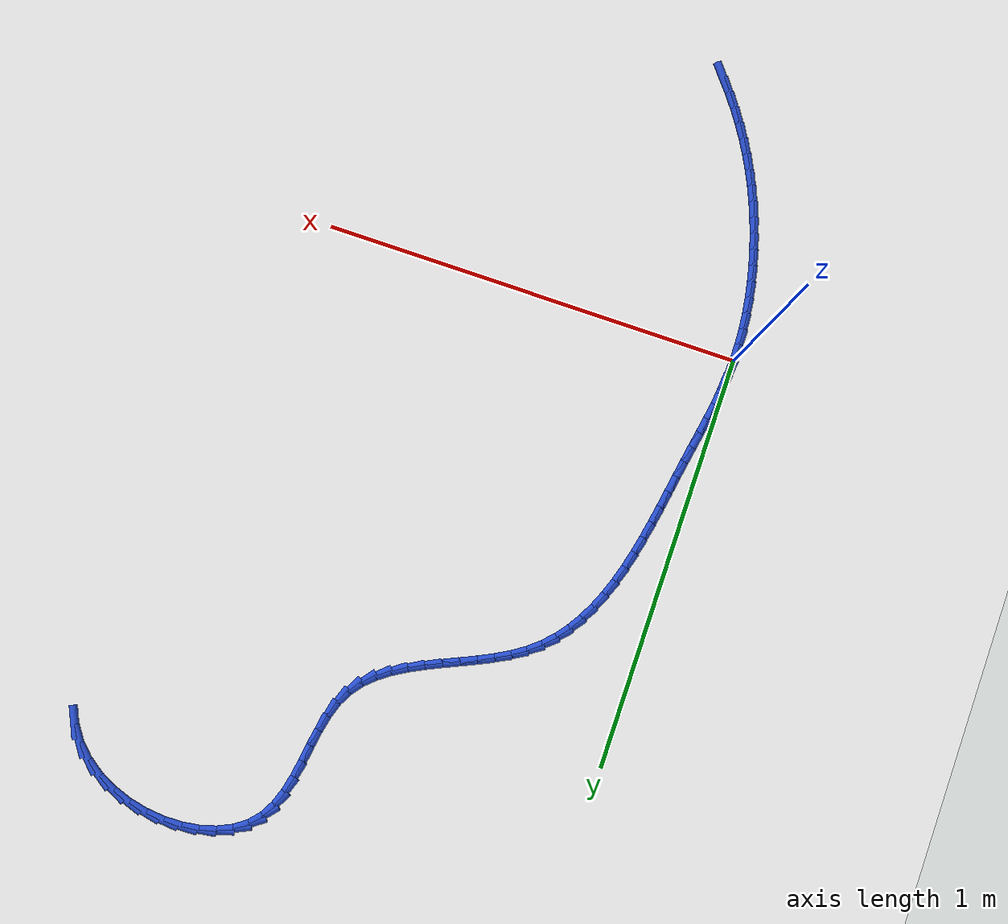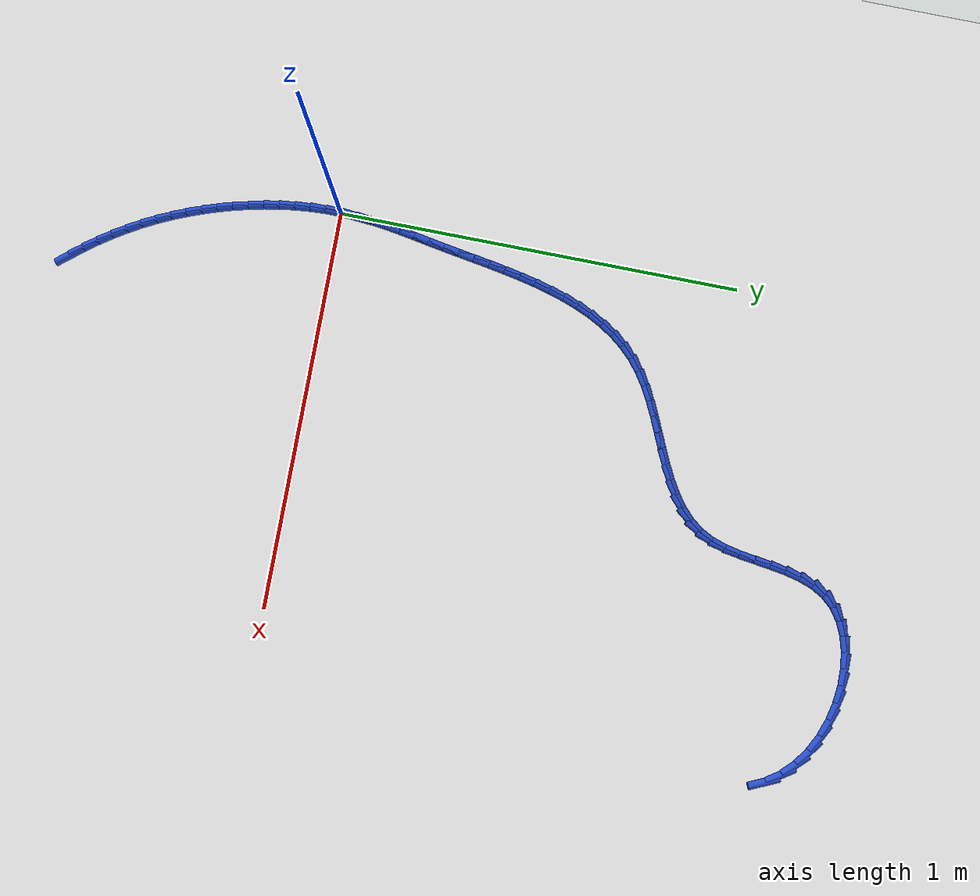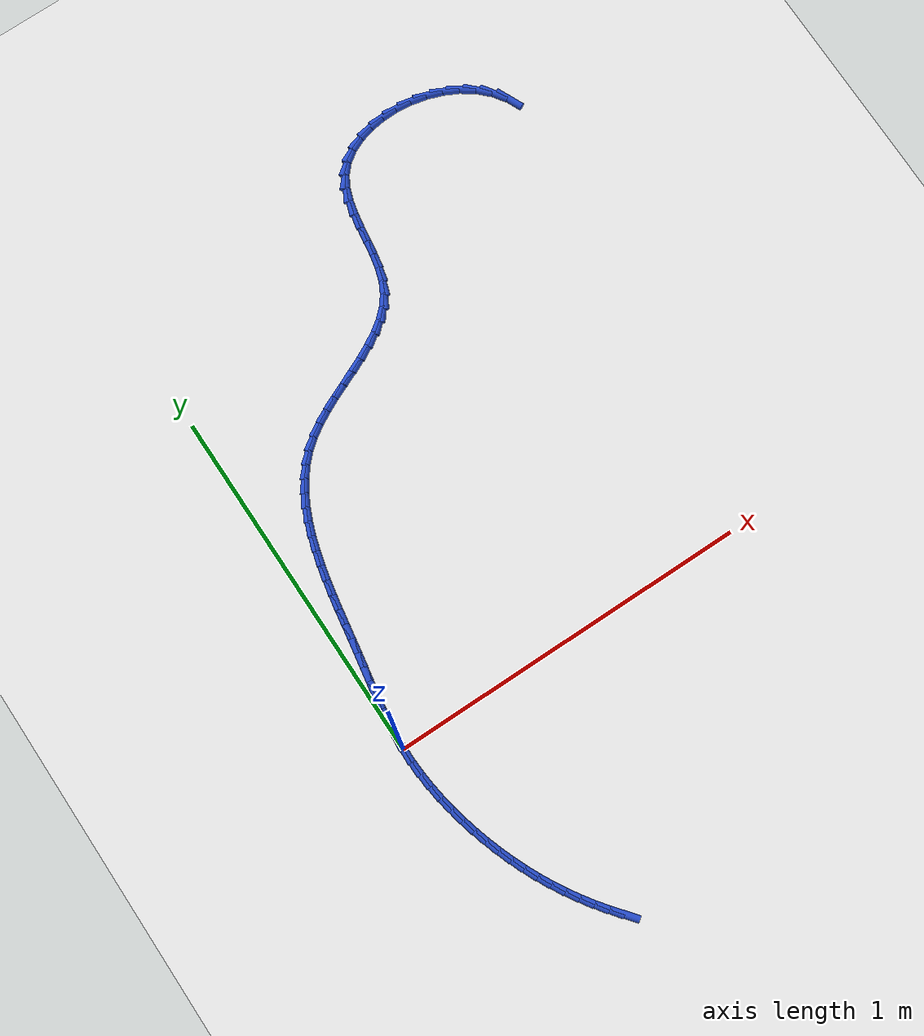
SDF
<sdf version="1.6">
 <world name="default">
  <model name="ground_plane">
   <static>1</static>
   <link name="link">
    <collision name="collision">
     <geometry><plane><normal>0 0 1</normal><size>100 100</size></plane></geometry>
     <surface><friction><ode><mu>100</mu><mu2>50</mu2></ode></friction></surface>
    </collision>
    <visual name="visual">
     <cast_shadows>0</cast_shadows>
     <geometry><plane><normal>0 0 1</normal><size>100 100</size></plane></geometry>
     <material>
      <script><uri>file://media/materials/scripts/gazebo.material</uri><name>Gazebo/WhiteGlow</name></script>
     </material>
    </visual>
   </link>
  </model>
  <model name="line">
   <link name="link_0">
    <pose>9.540979117872439e-18 1.3183898417423734e-16 0.01 0 1.57 1.5213984638818068</pose>
    <collision name="collision">
     <geometry><cylinder><radius>0.01</radius><length>0.08</length></cylinder></geometry>
    </collision>
    <visual name="visual">
     <material>
      <script><name>Gazebo/Blue</name><uri>file://media/materials/scripts/gazebo.material</uri></script>
     </material>
     <geometry><cylinder><radius>0.01</radius><length>0.08</length></cylinder></geometry>
    </visual>
   </link>
   <link name="link_1">
    <pose>0.0018602137942777413 0.03762714361064959 0.01 0 1.57 1.4777009141318533</pose>
    <collision name="collision">
     <geometry><cylinder><radius>0.01</radius><length>0.08</length></cylinder></geometry>
    </collision>
    <visual name="visual">
     <material>
      <script><name>Gazebo/Blue</name><uri>file://media/materials/scripts/gazebo.material</uri></script>
     </material>
     <geometry><cylinder><radius>0.01</radius><length>0.08</length></cylinder></geometry>
    </visual>
   </link>
   <link name="link_2">
    <pose>0.005358032314779202 0.07509094192685227 0.01 0 1.57 1.4428675951724659</pose>
    <collision name="collision">
     <geometry><cylinder><radius>0.01</radius><length>0.08</length></cylinder></geometry>
    </collision>
    <visual name="visual">
     <material>
      <script><name>Gazebo/Blue</name><uri>file://media/materials/scripts/gazebo.material</uri></script>
     </material>
     <geometry><cylinder><radius>0.01</radius><length>0.08</length></cylinder></geometry>
    </visual>
   </link>
   <link name="link_3">
    <pose>0.010174533303189185 0.11253520469424017 0.01 0 1.57 1.417198399982593</pose>
    <collision name="collision">
     <geometry><cylinder><radius>0.01</radius><length>0.08</length></cylinder></geometry>
    </collision>
    <visual name="visual">
     <material>
      <script><name>Gazebo/Blue</name><uri>file://media/materials/scripts/gazebo.material</uri></script>
     </material>
     <geometry><cylinder><radius>0.01</radius><length>0.08</length></cylinder></geometry>
    </visual>
   </link>
   <link name="link_4">
    <pose>0.015990794501192476 0.15010374165844498 0.01 0 1.57 1.4007402308607189</pose>
    <collision name="collision">
     <geometry><cylinder><radius>0.01</radius><length>0.08</length></cylinder></geometry>
    </collision>
    <visual name="visual">
     <material>
      <script><name>Gazebo/Blue</name><uri>file://media/materials/scripts/gazebo.material</uri></script>
     </material>
     <geometry><cylinder><radius>0.01</radius><length>0.08</length></cylinder></geometry>
    </visual>
   </link>
   <link name="link_5">
    <pose>0.02248789365047388 0.1879403625650987 0.01 0 1.57 1.3933547497004122</pose>
    <collision name="collision">
     <geometry><cylinder><radius>0.01</radius><length>0.08</length></cylinder></geometry>
    </collision>
    <visual name="visual">
     <material>
      <script><name>Gazebo/Blue</name><uri>file://media/materials/scripts/gazebo.material</uri></script>
     </material>
     <geometry><cylinder><radius>0.01</radius><length>0.08</length></cylinder></geometry>
    </visual>
   </link>
   <link name="link_6">
    <pose>0.029346908492718177 0.22618887715983313 0.01 0 1.57 1.3947697535677857</pose>
    <collision name="collision">
     <geometry><cylinder><radius>0.01</radius><length>0.08</length></cylinder></geometry>
    </collision>
    <visual name="visual">
     <material>
      <script><name>Gazebo/Blue</name><uri>file://media/materials/scripts/gazebo.material</uri></script>
     </material>
     <geometry><cylinder><radius>0.01</radius><length>0.08</length></cylinder></geometry>
    </visual>
   </link>
   <link name="link_7">
    <pose>0.036248916769610166 0.26499309518828007 0.01 0 1.57 1.4028272110607247</pose>
    <collision name="collision">
     <geometry><cylinder><radius>0.01</radius><length>0.08</length></cylinder></geometry>
    </collision>
    <visual name="visual">
     <material>
      <script><name>Gazebo/Blue</name><uri>file://media/materials/scripts/gazebo.material</uri></script>
     </material>
     <geometry><cylinder><radius>0.01</radius><length>0.08</length></cylinder></geometry>
    </visual>
   </link>
   <link name="link_8">
    <pose>0.042939994531234114 0.30445292408419544 0.01 0 1.57 1.4070385849353564</pose>
    <collision name="collision">
     <geometry><cylinder><radius>0.01</radius><length>0.08</length></cylinder></geometry>
    </collision>
    <visual name="visual">
     <material>
      <script><name>Gazebo/Blue</name><uri>file://media/materials/scripts/gazebo.material</uri></script>
     </material>
     <geometry><cylinder><radius>0.01</radius><length>0.08</length></cylinder></geometry>
    </visual>
   </link>
   <link name="link_9">
    <pose>0.04954302084536876 0.3444137642948315 0.01 0 1.57 1.4039381576390337</pose>
    <collision name="collision">
     <geometry><cylinder><radius>0.01</radius><length>0.08</length></cylinder></geometry>
    </collision>
    <visual name="visual">
     <material>
      <script><name>Gazebo/Blue</name><uri>file://media/materials/scripts/gazebo.material</uri></script>
     </material>
     <geometry><cylinder><radius>0.01</radius><length>0.08</length></cylinder></geometry>
    </visual>
   </link>
   <link name="link_10">
    <pose>0.05631632638733266 0.38462952713695747 0.01 0 1.57 1.3936261280437061</pose>
    <collision name="collision">
     <geometry><cylinder><radius>0.01</radius><length>0.08</length></cylinder></geometry>
    </collision>
    <visual name="visual">
     <material>
      <script><name>Gazebo/Blue</name><uri>file://media/materials/scripts/gazebo.material</uri></script>
     </material>
     <geometry><cylinder><radius>0.01</radius><length>0.08</length></cylinder></geometry>
    </visual>
   </link>
   <link name="link_11">
    <pose>0.06351841929244793 0.4248540040641556 0.01 0 1.57 1.3759993044138343</pose>
    <collision name="collision">
     <geometry><cylinder><radius>0.01</radius><length>0.08</length></cylinder></geometry>
    </collision>
    <visual name="visual">
     <material>
      <script><name>Gazebo/Blue</name><uri>file://media/materials/scripts/gazebo.material</uri></script>
     </material>
     <geometry><cylinder><radius>0.01</radius><length>0.08</length></cylinder></geometry>
    </visual>
   </link>
   <link name="link_12">
    <pose>0.07140780769603669 0.4648409865300077 0.01 0 1.57 1.3507603679512552</pose>
    <collision name="collision">
     <geometry><cylinder><radius>0.01</radius><length>0.08</length></cylinder></geometry>
    </collision>
    <visual name="visual">
     <material>
      <script><name>Gazebo/Blue</name><uri>file://media/materials/scripts/gazebo.material</uri></script>
     </material>
     <geometry><cylinder><radius>0.01</radius><length>0.08</length></cylinder></geometry>
    </visual>
   </link>
   <link name="link_13">
    <pose>0.08024299973342101 0.504344265988096 0.01 0 1.57 1.3174328158271387</pose>
    <collision name="collision">
     <geometry><cylinder><radius>0.01</radius><length>0.08</length></cylinder></geometry>
    </collision>
    <visual name="visual">
     <material>
      <script><name>Gazebo/Blue</name><uri>file://media/materials/scripts/gazebo.material</uri></script>
     </material>
     <geometry><cylinder><radius>0.01</radius><length>0.08</length></cylinder></geometry>
    </visual>
   </link>
   <link name="link_14">
    <pose>0.09028250353992306 0.5431176338920027 0.01 0 1.57 1.2753842196467329</pose>
    <collision name="collision">
     <geometry><cylinder><radius>0.01</radius><length>0.08</length></cylinder></geometry>
    </collision>
    <visual name="visual">
     <material>
      <script><name>Gazebo/Blue</name><uri>file://media/materials/scripts/gazebo.material</uri></script>
     </material>
     <geometry><cylinder><radius>0.01</radius><length>0.08</length></cylinder></geometry>
    </visual>
   </link>
   <link name="link_15">
    <pose>0.10178482725086493 0.5809148816953095 0.01 0 1.57 1.2238695057610665</pose>
    <collision name="collision">
     <geometry><cylinder><radius>0.01</radius><length>0.08</length></cylinder></geometry>
    </collision>
    <visual name="visual">
     <material>
      <script><name>Gazebo/Blue</name><uri>file://media/materials/scripts/gazebo.material</uri></script>
     </material>
     <geometry><cylinder><radius>0.01</radius><length>0.08</length></cylinder></geometry>
    </visual>
   </link>
   <link name="link_16">
    <pose>0.11500847900156871 0.6174898008515988 0.01 0 1.57 1.1621110110754658</pose>
    <collision name="collision">
     <geometry><cylinder><radius>0.01</radius><length>0.08</length></cylinder></geometry>
    </collision>
    <visual name="visual">
     <material>
      <script><name>Gazebo/Blue</name><uri>file://media/materials/scripts/gazebo.material</uri></script>
     </material>
     <geometry><cylinder><radius>0.01</radius><length>0.08</length></cylinder></geometry>
    </visual>
   </link>
   <link name="link_17">
    <pose>0.13021196692735654 0.6525961828144523 0.01 0 1.57 1.0894358017726544</pose>
    <collision name="collision">
     <geometry><cylinder><radius>0.01</radius><length>0.08</length></cylinder></geometry>
    </collision>
    <visual name="visual">
     <material>
      <script><name>Gazebo/Blue</name><uri>file://media/materials/scripts/gazebo.material</uri></script>
     </material>
     <geometry><cylinder><radius>0.01</radius><length>0.08</length></cylinder></geometry>
    </visual>
   </link>
   <link name="link_18">
    <pose>0.1476537991635505 0.6859878190374523 0.01 0 1.57 1.0054873231868855</pose>
    <collision name="collision">
     <geometry><cylinder><radius>0.01</radius><length>0.08</length></cylinder></geometry>
    </collision>
    <visual name="visual">
     <material>
      <script><name>Gazebo/Blue</name><uri>file://media/materials/scripts/gazebo.material</uri></script>
     </material>
     <geometry><cylinder><radius>0.01</radius><length>0.08</length></cylinder></geometry>
    </visual>
   </link>
   <link name="link_19">
    <pose>0.16759248384547268 0.7174185009741809 0.01 0 1.57 0.9105074810997517</pose>
    <collision name="collision">
     <geometry><cylinder><radius>0.01</radius><length>0.08</length></cylinder></geometry>
    </collision>
    <visual name="visual">
     <material>
      <script><name>Gazebo/Blue</name><uri>file://media/materials/scripts/gazebo.material</uri></script>
     </material>
     <geometry><cylinder><radius>0.01</radius><length>0.08</length></cylinder></geometry>
    </visual>
   </link>
   <link name="link_20">
    <pose>0.1902865291084453 0.74664202007822 0.01 0 1.57 0.8056368817264867</pose>
    <collision name="collision">
     <geometry><cylinder><radius>0.01</radius><length>0.08</length></cylinder></geometry>
    </collision>
    <visual name="visual">
     <material>
      <script><name>Gazebo/Blue</name><uri>file://media/materials/scripts/gazebo.material</uri></script>
     </material>
     <geometry><cylinder><radius>0.01</radius><length>0.08</length></cylinder></geometry>
    </visual>
   </link>
   <link name="link_21">
    <pose>0.2159944430877903 0.7734121678031516 0.01 0 1.57 0.693253201119296</pose>
    <collision name="collision">
     <geometry><cylinder><radius>0.01</radius><length>0.08</length></cylinder></geometry>
    </collision>
    <visual name="visual">
     <material>
      <script><name>Gazebo/Blue</name><uri>file://media/materials/scripts/gazebo.material</uri></script>
     </material>
     <geometry><cylinder><radius>0.01</radius><length>0.08</length></cylinder></geometry>
    </visual>
   </link>
   <link name="link_22">
    <pose>0.24497061301210393 0.7974861511714872 0.01 0 1.57 0.5878919642807634</pose>
    <collision name="collision">
     <geometry><cylinder><radius>0.01</radius><length>0.08</length></cylinder></geometry>
    </collision>
    <visual name="visual">
     <material>
      <script><name>Gazebo/Blue</name><uri>file://media/materials/scripts/gazebo.material</uri></script>
     </material>
     <geometry><cylinder><radius>0.01</radius><length>0.08</length></cylinder></geometry>
    </visual>
   </link>
   <link name="link_23">
    <pose>0.2771178980864824 0.8189125374025596 0.01 0 1.57 0.5095602700968297</pose>
    <collision name="collision">
     <geometry><cylinder><radius>0.01</radius><length>0.08</length></cylinder></geometry>
    </collision>
    <visual name="visual">
     <material>
      <script><name>Gazebo/Blue</name><uri>file://media/materials/scripts/gazebo.material</uri></script>
     </material>
     <geometry><cylinder><radius>0.01</radius><length>0.08</length></cylinder></geometry>
    </visual>
   </link>
   <link name="link_24">
    <pose>0.3117239797503072 0.8382497771472255 0.01 0 1.57 0.45729567412060956</pose>
    <collision name="collision">
     <geometry><cylinder><radius>0.01</radius><length>0.08</length></cylinder></geometry>
    </collision>
    <visual name="visual">
     <material>
      <script><name>Gazebo/Blue</name><uri>file://media/materials/scripts/gazebo.material</uri></script>
     </material>
     <geometry><cylinder><radius>0.01</radius><length>0.08</length></cylinder></geometry>
    </visual>
   </link>
   <link name="link_25">
    <pose>0.3480144544973966 0.8561077794913734 0.01 0 1.57 0.4283943543734005</pose>
    <collision name="collision">
     <geometry><cylinder><radius>0.01</radius><length>0.08</length></cylinder></geometry>
    </collision>
    <visual name="visual">
     <material>
      <script><name>Gazebo/Blue</name><uri>file://media/materials/scripts/gazebo.material</uri></script>
     </material>
     <geometry><cylinder><radius>0.01</radius><length>0.08</length></cylinder></geometry>
    </visual>
   </link>
   <link name="link_26">
    <pose>0.38521491882156916 0.8730964535208919 0.01 0 1.57 0.42124980099251497</pose>
    <collision name="collision">
     <geometry><cylinder><radius>0.01</radius><length>0.08</length></cylinder></geometry>
    </collision>
    <visual name="visual">
     <material>
      <script><name>Gazebo/Blue</name><uri>file://media/materials/scripts/gazebo.material</uri></script>
     </material>
     <geometry><cylinder><radius>0.01</radius><length>0.08</length></cylinder></geometry>
    </visual>
   </link>
   <link name="link_27">
    <pose>0.42255096921664304 0.8898257083216696 0.01 0 1.57 0.43560560228455364</pose>
    <collision name="collision">
     <geometry><cylinder><radius>0.01</radius><length>0.08</length></cylinder></geometry>
    </collision>
    <visual name="visual">
     <material>
      <script><name>Gazebo/Blue</name><uri>file://media/materials/scripts/gazebo.material</uri></script>
     </material>
     <geometry><cylinder><radius>0.01</radius><length>0.08</length></cylinder></geometry>
    </visual>
   </link>
   <link name="link_28">
    <pose>0.4592482021764366 0.9069054529795945 0.01 0 1.57 0.47263384323847857</pose>
    <collision name="collision">
     <geometry><cylinder><radius>0.01</radius><length>0.08</length></cylinder></geometry>
    </collision>
    <visual name="visual">
     <material>
      <script><name>Gazebo/Blue</name><uri>file://media/materials/scripts/gazebo.material</uri></script>
     </material>
     <geometry><cylinder><radius>0.01</radius><length>0.08</length></cylinder></geometry>
    </visual>
   </link>
   <link name="link_29">
    <pose>0.494532214194768 0.9249455965805553 0.01 0 1.57 0.5349053730817138</pose>
    <collision name="collision">
     <geometry><cylinder><radius>0.01</radius><length>0.08</length></cylinder></geometry>
    </collision>
    <visual name="visual">
     <material>
      <script><name>Gazebo/Blue</name><uri>file://media/materials/scripts/gazebo.material</uri></script>
     </material>
     <geometry><cylinder><radius>0.01</radius><length>0.08</length></cylinder></geometry>
    </visual>
   </link>
   <link name="link_30">
    <pose>0.5276286017654558 0.94455604821044 0.01 0 1.57 0.6260728614755936</pose>
    <collision name="collision">
     <geometry><cylinder><radius>0.01</radius><length>0.08</length></cylinder></geometry>
    </collision>
    <visual name="visual">
     <material>
      <script><name>Gazebo/Blue</name><uri>file://media/materials/scripts/gazebo.material</uri></script>
     </material>
     <geometry><cylinder><radius>0.01</radius><length>0.08</length></cylinder></geometry>
    </visual>
   </link>
   <link name="link_31">
    <pose>0.5577629613823181 0.9663467169551375 0.01 0 1.57 0.749768314432401</pose>
    <collision name="collision">
     <geometry><cylinder><radius>0.01</radius><length>0.08</length></cylinder></geometry>
    </collision>
    <visual name="visual">
     <material>
      <script><name>Gazebo/Blue</name><uri>file://media/materials/scripts/gazebo.material</uri></script>
     </material>
     <geometry><cylinder><radius>0.01</radius><length>0.08</length></cylinder></geometry>
    </visual>
   </link>
   <link name="link_32">
    <pose>0.5841608895391733 0.9909275119005361 0.01 0 1.57 0.9069928572577938</pose>
    <collision name="collision">
     <geometry><cylinder><radius>0.01</radius><length>0.08</length></cylinder></geometry>
    </collision>
    <visual name="visual">
     <material>
      <script><name>Gazebo/Blue</name><uri>file://media/materials/scripts/gazebo.material</uri></script>
     </material>
     <geometry><cylinder><radius>0.01</radius><length>0.08</length></cylinder></geometry>
    </visual>
   </link>
   <link name="link_33">
    <pose>0.6060479827298397 1.018908342132524 0.01 0 1.57 1.0899137970166974</pose>
    <collision name="collision">
     <geometry><cylinder><radius>0.01</radius><length>0.08</length></cylinder></geometry>
    </collision>
    <visual name="visual">
     <material>
      <script><name>Gazebo/Blue</name><uri>file://media/materials/scripts/gazebo.material</uri></script>
     </material>
     <geometry><cylinder><radius>0.01</radius><length>0.08</length></cylinder></geometry>
    </visual>
   </link>
   <link name="link_34">
    <pose>0.6227133558785802 1.0508506773356325 0.01 0 1.57 1.249323673254769</pose>
    <collision name="collision">
     <geometry><cylinder><radius>0.01</radius><length>0.08</length></cylinder></geometry>
    </collision>
    <visual name="visual">
     <material>
      <script><name>Gazebo/Blue</name><uri>file://media/materials/scripts/gazebo.material</uri></script>
     </material>
     <geometry><cylinder><radius>0.01</radius><length>0.08</length></cylinder></geometry>
    </visual>
   </link>
   <link name="link_35">
    <pose>0.6345714150001026 1.086457835845379 0.01 0 1.57 1.3537976751370477</pose>
    <collision name="collision">
     <geometry><cylinder><radius>0.01</radius><length>0.08</length></cylinder></geometry>
    </collision>
    <visual name="visual">
     <material>
      <script><name>Gazebo/Blue</name><uri>file://media/materials/scripts/gazebo.material</uri></script>
     </material>
     <geometry><cylinder><radius>0.01</radius><length>0.08</length></cylinder></geometry>
    </visual>
   </link>
   <link name="link_36">
    <pose>0.6430019857467378 1.1246969032381031 0.01 0 1.57 1.4110650022134106</pose>
    <collision name="collision">
     <geometry><cylinder><radius>0.01</radius><length>0.08</length></cylinder></geometry>
    </collision>
    <visual name="visual">
     <material>
      <script><name>Gazebo/Blue</name><uri>file://media/materials/scripts/gazebo.material</uri></script>
     </material>
     <geometry><cylinder><radius>0.01</radius><length>0.08</length></cylinder></geometry>
    </visual>
   </link>
   <link name="link_37">
    <pose>0.6494162023737909 1.1645110890281178 0.01 0 1.57 1.4277523734582998</pose>
    <collision name="collision">
     <geometry><cylinder><radius>0.01</radius><length>0.08</length></cylinder></geometry>
    </collision>
    <visual name="visual">
     <material>
      <script><name>Gazebo/Blue</name><uri>file://media/materials/scripts/gazebo.material</uri></script>
     </material>
     <geometry><cylinder><radius>0.01</radius><length>0.08</length></cylinder></geometry>
    </visual>
   </link>
   <link name="link_38">
    <pose>0.6552251991365647 1.2048436027297342 0.01 0 1.57 1.4060738639525148</pose>
    <collision name="collision">
     <geometry><cylinder><radius>0.01</radius><length>0.08</length></cylinder></geometry>
    </collision>
    <visual name="visual">
     <material>
      <script><name>Gazebo/Blue</name><uri>file://media/materials/scripts/gazebo.material</uri></script>
     </material>
     <geometry><cylinder><radius>0.01</radius><length>0.08</length></cylinder></geometry>
    </visual>
   </link>
   <link name="link_39">
    <pose>0.6618401102903638 1.2446376538572648 0.01 0 1.57 1.3435786459064756</pose>
    <collision name="collision">
     <geometry><cylinder><radius>0.01</radius><length>0.08</length></cylinder></geometry>
    </collision>
    <visual name="visual">
     <material>
      <script><name>Gazebo/Blue</name><uri>file://media/materials/scripts/gazebo.material</uri></script>
     </material>
     <geometry><cylinder><radius>0.01</radius><length>0.08</length></cylinder></geometry>
    </visual>
   </link>
   <link name="link_40">
    <pose>0.6706720700904923 1.2828364519250215 0.01 0 1.57 1.2336509574036558</pose>
    <collision name="collision">
     <geometry><cylinder><radius>0.01</radius><length>0.08</length></cylinder></geometry>
    </collision>
    <visual name="visual">
     <material>
      <script><name>Gazebo/Blue</name><uri>file://media/materials/scripts/gazebo.material</uri></script>
     </material>
     <geometry><cylinder><radius>0.01</radius><length>0.08</length></cylinder></geometry>
    </visual>
   </link>
   <link name="link_41">
    <pose>0.6831322127922539 1.318383206447316 0.01 0 1.57 1.0682279757337139</pose>
    <collision name="collision">
     <geometry><cylinder><radius>0.01</radius><length>0.08</length></cylinder></geometry>
    </collision>
    <visual name="visual">
     <material>
      <script><name>Gazebo/Blue</name><uri>file://media/materials/scripts/gazebo.material</uri></script>
     </material>
     <geometry><cylinder><radius>0.01</radius><length>0.08</length></cylinder></geometry>
    </visual>
   </link>
   <link name="link_42">
    <pose>0.7006316726509526 1.35022112693846 0.01 0 1.57 0.8487314689223326</pose>
    <collision name="collision">
     <geometry><cylinder><radius>0.01</radius><length>0.08</length></cylinder></geometry>
    </collision>
    <visual name="visual">
     <material>
      <script><name>Gazebo/Blue</name><uri>file://media/materials/scripts/gazebo.material</uri></script>
     </material>
     <geometry><cylinder><radius>0.01</radius><length>0.08</length></cylinder></geometry>
    </visual>
   </link>
   <link name="link_43">
    <pose>0.7245030627952682 1.3773252909171676 0.01 0 1.57 0.626437201773708</pose>
    <collision name="collision">
     <geometry><cylinder><radius>0.01</radius><length>0.08</length></cylinder></geometry>
    </collision>
    <visual name="visual">
     <material>
      <script><name>Gazebo/Blue</name><uri>file://media/materials/scripts/gazebo.material</uri></script>
     </material>
     <geometry><cylinder><radius>0.01</radius><length>0.08</length></cylinder></geometry>
    </visual>
   </link>
   <link name="link_44">
    <pose>0.7547464578711351 1.3992115901270699 0.01 0 1.57 0.43820197652767523</pose>
    <collision name="collision">
     <geometry><cylinder><radius>0.01</radius><length>0.08</length></cylinder></geometry>
    </collision>
    <visual name="visual">
     <material>
      <script><name>Gazebo/Blue</name><uri>file://media/materials/scripts/gazebo.material</uri></script>
     </material>
     <geometry><cylinder><radius>0.01</radius><length>0.08</length></cylinder></geometry>
    </visual>
   </link>
   <link name="link_45">
    <pose>0.7902490270826533 1.4158475918931919 0.01 0 1.57 0.27943412489658653</pose>
    <collision name="collision">
     <geometry><cylinder><radius>0.01</radius><length>0.08</length></cylinder></geometry>
    </collision>
    <visual name="visual">
     <material>
      <script><name>Gazebo/Blue</name><uri>file://media/materials/scripts/gazebo.material</uri></script>
     </material>
     <geometry><cylinder><radius>0.01</radius><length>0.08</length></cylinder></geometry>
    </visual>
   </link>
   <link name="link_46">
    <pose>0.8298637923001349 1.4272147223252023 0.01 0 1.57 0.14182410572415036</pose>
    <collision name="collision">
     <geometry><cylinder><radius>0.01</radius><length>0.08</length></cylinder></geometry>
    </collision>
    <visual name="visual">
     <material>
      <script><name>Gazebo/Blue</name><uri>file://media/materials/scripts/gazebo.material</uri></script>
     </material>
     <geometry><cylinder><radius>0.01</radius><length>0.08</length></cylinder></geometry>
    </visual>
   </link>
   <link name="link_47">
    <pose>0.872443775393891 1.433294407532766 0.01 0 1.57 0.017423846027502545</pose>
    <collision name="collision">
     <geometry><cylinder><radius>0.01</radius><length>0.08</length></cylinder></geometry>
    </collision>
    <visual name="visual">
     <material>
      <script><name>Gazebo/Blue</name><uri>file://media/materials/scripts/gazebo.material</uri></script>
     </material>
     <geometry><cylinder><radius>0.01</radius><length>0.08</length></cylinder></geometry>
    </visual>
   </link>
   <link name="link_48">
    <pose>0.9168419982342343 1.434068073625551 0.01 0 1.57 -0.10063469008400559</pose>
    <collision name="collision">
     <geometry><cylinder><radius>0.01</radius><length>0.08</length></cylinder></geometry>
    </collision>
    <visual name="visual">
     <material>
      <script><name>Gazebo/Blue</name><uri>file://media/materials/scripts/gazebo.material</uri></script>
     </material>
     <geometry><cylinder><radius>0.01</radius><length>0.08</length></cylinder></geometry>
    </visual>
   </link>
   <link name="link_49">
    <pose>0.9619114826914754 1.4295171467132226 0.01 0 1.57 -0.21833486634404492</pose>
    <collision name="collision">
     <geometry><cylinder><radius>0.01</radius><length>0.08</length></cylinder></geometry>
    </collision>
    <visual name="visual">
     <material>
      <script><name>Gazebo/Blue</name><uri>file://media/materials/scripts/gazebo.material</uri></script>
     </material>
     <geometry><cylinder><radius>0.01</radius><length>0.08</length></cylinder></geometry>
    </visual>
   </link>
   <link name="link_50">
    <pose>1.0065052506359273 1.4196230529054479 0.01 0 1.57 -0.34114500668528774</pose>
    <collision name="collision">
     <geometry><cylinder><radius>0.01</radius><length>0.08</length></cylinder></geometry>
    </collision>
    <visual name="visual">
     <material>
      <script><name>Gazebo/Blue</name><uri>file://media/materials/scripts/gazebo.material</uri></script>
     </material>
     <geometry><cylinder><radius>0.01</radius><length>0.08</length></cylinder></geometry>
    </visual>
   </link>
   <link name="link_51">
    <pose>1.049476323937901 1.4043672183118932 0.01 0 1.57 -0.4742460753214095</pose>
    <collision name="collision">
     <geometry><cylinder><radius>0.01</radius><length>0.08</length></cylinder></geometry>
    </collision>
    <visual name="visual">
     <material>
      <script><name>Gazebo/Blue</name><uri>file://media/materials/scripts/gazebo.material</uri></script>
     </material>
     <geometry><cylinder><radius>0.01</radius><length>0.08</length></cylinder></geometry>
    </visual>
   </link>
   <link name="link_52">
    <pose>1.0896777244677087 1.3837310690422249 0.01 0 1.57 -0.6223879111697722</pose>
    <collision name="collision">
     <geometry><cylinder><radius>0.01</radius><length>0.08</length></cylinder></geometry>
    </collision>
    <visual name="visual">
     <material>
      <script><name>Gazebo/Blue</name><uri>file://media/materials/scripts/gazebo.material</uri></script>
     </material>
     <geometry><cylinder><radius>0.01</radius><length>0.08</length></cylinder></geometry>
    </visual>
   </link>
   <link name="link_53">
    <pose>1.1259624740956622 1.3576960312061104 0.01 0 1.57 -0.7890899661369595</pose>
    <collision name="collision">
     <geometry><cylinder><radius>0.01</radius><length>0.08</length></cylinder></geometry>
    </collision>
    <visual name="visual">
     <material>
      <script><name>Gazebo/Blue</name><uri>file://media/materials/scripts/gazebo.material</uri></script>
     </material>
     <geometry><cylinder><radius>0.01</radius><length>0.08</length></cylinder></geometry>
    </visual>
   </link>
   <link name="link_54">
    <pose>1.1571835946920728 1.3262435309132152 0.01 0 1.57 -0.9746696952326042</pose>
    <collision name="collision">
     <geometry><cylinder><radius>0.01</radius><length>0.08</length></cylinder></geometry>
    </collision>
    <visual name="visual">
     <material>
      <script><name>Gazebo/Blue</name><uri>file://media/materials/scripts/gazebo.material</uri></script>
     </material>
     <geometry><cylinder><radius>0.01</radius><length>0.08</length></cylinder></geometry>
    </visual>
   </link>
   <link name="link_55">
    <pose>1.1822045138408306 1.2893648424448048 0.01 0 1.57 -1.1458124868169501</pose>
    <collision name="collision">
     <geometry><cylinder><radius>0.01</radius><length>0.08</length></cylinder></geometry>
    </collision>
    <visual name="visual">
     <material>
      <script><name>Gazebo/Blue</name><uri>file://media/materials/scripts/gazebo.material</uri></script>
     </material>
     <geometry><cylinder><radius>0.01</radius><length>0.08</length></cylinder></geometry>
    </visual>
   </link>
   <link name="link_212">
    <pose>0.23107788434410964 -0.6380805401307099 0.01 0 1.57 -0.8900437674851422</pose>
    <collision name="collision">
     <geometry><cylinder><radius>0.01</radius><length>0.08</length></cylinder></geometry>
    </collision>
    <visual name="visual">
     <material>
      <script><name>Gazebo/Blue</name><uri>file://media/materials/scripts/gazebo.material</uri></script>
     </material>
     <geometry><cylinder><radius>0.01</radius><length>0.08</length></cylinder></geometry>
    </visual>
   </link>
   <link name="link_213">
    <pose>0.20645946004687946 -0.607683926833661 0.01 0 1.57 -0.930754652557921</pose>
    <collision name="collision">
     <geometry><cylinder><radius>0.01</radius><length>0.08</length></cylinder></geometry>
    </collision>
    <visual name="visual">
     <material>
      <script><name>Gazebo/Blue</name><uri>file://media/materials/scripts/gazebo.material</uri></script>
     </material>
     <geometry><cylinder><radius>0.01</radius><length>0.08</length></cylinder></geometry>
    </visual>
   </link>
   <link name="link_214">
    <pose>0.1831540149823389 -0.5763850067671791 0.01 0 1.57 -0.9711877547883361</pose>
    <collision name="collision">
     <geometry><cylinder><radius>0.01</radius><length>0.08</length></cylinder></geometry>
    </collision>
    <visual name="visual">
     <material>
      <script><name>Gazebo/Blue</name><uri>file://media/materials/scripts/gazebo.material</uri></script>
     </material>
     <geometry><cylinder><radius>0.01</radius><length>0.08</length></cylinder></geometry>
    </visual>
   </link>
   <link name="link_215">
    <pose>0.16121059012114902 -0.5442834354377497 0.01 0 1.57 -1.0115491562128887</pose>
    <collision name="collision">
     <geometry><cylinder><radius>0.01</radius><length>0.08</length></cylinder></geometry>
    </collision>
    <visual name="visual">
     <material>
      <script><name>Gazebo/Blue</name><uri>file://media/materials/scripts/gazebo.material</uri></script>
     </material>
     <geometry><cylinder><radius>0.01</radius><length>0.08</length></cylinder></geometry>
    </visual>
   </link>
   <link name="link_216">
    <pose>0.1406780410786225 -0.5114786634851504 0.01 0 1.57 -1.0518554298269283</pose>
    <collision name="collision">
     <geometry><cylinder><radius>0.01</radius><length>0.08</length></cylinder></geometry>
    </collision>
    <visual name="visual">
     <material>
      <script><name>Gazebo/Blue</name><uri>file://media/materials/scripts/gazebo.material</uri></script>
     </material>
     <geometry><cylinder><radius>0.01</radius><length>0.08</length></cylinder></geometry>
    </visual>
   </link>
   <link name="link_217">
    <pose>0.12158170238550293 -0.4780441445265773 0.01 0 1.57 -1.0917568841597558</pose>
    <collision name="collision">
     <geometry><cylinder><radius>0.01</radius><length>0.08</length></cylinder></geometry>
    </collision>
    <visual name="visual">
     <material>
      <script><name>Gazebo/Blue</name><uri>file://media/materials/scripts/gazebo.material</uri></script>
     </material>
     <geometry><cylinder><radius>0.01</radius><length>0.08</length></cylinder></geometry>
    </visual>
   </link>
   <link name="link_218">
    <pose>0.1039006270779854 -0.4440021788807758 0.01 0 1.57 -1.1310899210063101</pose>
    <collision name="collision">
     <geometry><cylinder><radius>0.01</radius><length>0.08</length></cylinder></geometry>
    </collision>
    <visual name="visual">
     <material>
      <script><name>Gazebo/Blue</name><uri>file://media/materials/scripts/gazebo.material</uri></script>
     </material>
     <geometry><cylinder><radius>0.01</radius><length>0.08</length></cylinder></geometry>
    </visual>
   </link>
   <link name="link_219">
    <pose>0.08760846603127756 -0.40936909604908406 0.01 0 1.57 -1.1697378732488486</pose>
    <collision name="collision">
     <geometry><cylinder><radius>0.01</radius><length>0.08</length></cylinder></geometry>
    </collision>
    <visual name="visual">
     <material>
      <script><name>Gazebo/Blue</name><uri>file://media/materials/scripts/gazebo.material</uri></script>
     </material>
     <geometry><cylinder><radius>0.01</radius><length>0.08</length></cylinder></geometry>
    </visual>
   </link>
   <link name="link_220">
    <pose>0.07267887012058821 -0.3741612255328424 0.01 0 1.57 -1.2075961798507202</pose>
    <collision name="collision">
     <geometry><cylinder><radius>0.01</radius><length>0.08</length></cylinder></geometry>
    </collision>
    <visual name="visual">
     <material>
      <script><name>Gazebo/Blue</name><uri>file://media/materials/scripts/gazebo.material</uri></script>
     </material>
     <geometry><cylinder><radius>0.01</radius><length>0.08</length></cylinder></geometry>
    </visual>
   </link>
   <link name="link_221">
    <pose>0.059085490221125074 -0.33839489683338897 0.01 0 1.57 -1.244573509139913</pose>
    <collision name="collision">
     <geometry><cylinder><radius>0.01</radius><length>0.08</length></cylinder></geometry>
    </collision>
    <visual name="visual">
     <material>
      <script><name>Gazebo/Blue</name><uri>file://media/materials/scripts/gazebo.material</uri></script>
     </material>
     <geometry><cylinder><radius>0.01</radius><length>0.08</length></cylinder></geometry>
    </visual>
   </link>
   <link name="link_222">
    <pose>0.0468019772080961 -0.30208643945206254 0.01 0 1.57 -1.2805930945467507</pose>
    <collision name="collision">
     <geometry><cylinder><radius>0.01</radius><length>0.08</length></cylinder></geometry>
    </collision>
    <visual name="visual">
     <material>
      <script><name>Gazebo/Blue</name><uri>file://media/materials/scripts/gazebo.material</uri></script>
     </material>
     <geometry><cylinder><radius>0.01</radius><length>0.08</length></cylinder></geometry>
    </visual>
   </link>
   <link name="link_223">
    <pose>0.03580202009100823 -0.26525221319382775 0.01 0 1.57 -1.3161704326429469</pose>
    <collision name="collision">
     <geometry><cylinder><radius>0.01</radius><length>0.08</length></cylinder></geometry>
    </collision>
    <visual name="visual">
     <material>
      <script><name>Gazebo/Blue</name><uri>file://media/materials/scripts/gazebo.material</uri></script>
     </material>
     <geometry><cylinder><radius>0.01</radius><length>0.08</length></cylinder></geometry>
    </visual>
   </link>
   <link name="link_224">
    <pose>0.02608841501346336 -0.22793170800501342 0.01 0 1.57 -1.3530108511264953</pose>
    <collision name="collision">
     <geometry><cylinder><radius>0.01</radius><length>0.08</length></cylinder></geometry>
    </collision>
    <visual name="visual">
     <material>
      <script><name>Gazebo/Blue</name><uri>file://media/materials/scripts/gazebo.material</uri></script>
     </material>
     <geometry><cylinder><radius>0.01</radius><length>0.08</length></cylinder></geometry>
    </visual>
   </link>
   <link name="link_225">
    <pose>0.017744929147478637 -0.19022875789712757 0.01 0 1.57 -1.3916589888031232</pose>
    <collision name="collision">
     <geometry><cylinder><radius>0.01</radius><length>0.08</length></cylinder></geometry>
    </collision>
    <visual name="visual">
     <material>
      <script><name>Gazebo/Blue</name><uri>file://media/materials/scripts/gazebo.material</uri></script>
     </material>
     <geometry><cylinder><radius>0.01</radius><length>0.08</length></cylinder></geometry>
    </visual>
   </link>
   <link name="link_226">
    <pose>0.010869297121883852 -0.1522582961966952 0.01 0 1.57 -1.4323997555215584</pose>
    <collision name="collision">
     <geometry><cylinder><radius>0.01</radius><length>0.08</length></cylinder></geometry>
    </collision>
    <visual name="visual">
     <material>
      <script><name>Gazebo/Blue</name><uri>file://media/materials/scripts/gazebo.material</uri></script>
     </material>
     <geometry><cylinder><radius>0.01</radius><length>0.08</length></cylinder></geometry>
    </visual>
   </link>
   <link name="link_227">
    <pose>0.005559253565508795 -0.11413525623024133 0.01 0 1.57 -1.4755234010387914</pose>
    <collision name="collision">
     <geometry><cylinder><radius>0.01</radius><length>0.08</length></cylinder></geometry>
    </collision>
    <visual name="visual">
     <material>
      <script><name>Gazebo/Blue</name><uri>file://media/materials/scripts/gazebo.material</uri></script>
     </material>
     <geometry><cylinder><radius>0.01</radius><length>0.08</length></cylinder></geometry>
    </visual>
   </link>
   <link name="link_228">
    <pose>0.0019125331071831956 -0.07597457132428996 0.01 0 1.57 -1.5213226931961958</pose>
    <collision name="collision">
     <geometry><cylinder><radius>0.01</radius><length>0.08</length></cylinder></geometry>
    </collision>
    <visual name="visual">
     <material>
      <script><name>Gazebo/Blue</name><uri>file://media/materials/scripts/gazebo.material</uri></script>
     </material>
     <geometry><cylinder><radius>0.01</radius><length>0.08</length></cylinder></geometry>
    </visual>
   </link>
   <link name="link_229">
    <pose>2.6870375737037856e-05 -0.037891174805368105 0.01 0 1.57 -1.5700871808955996</pose>
    <collision name="collision">
     <geometry><cylinder><radius>0.01</radius><length>0.08</length></cylinder></geometry>
    </collision>
    <visual name="visual">
     <material>
      <script><name>Gazebo/Blue</name><uri>file://media/materials/scripts/gazebo.material</uri></script>
     </material>
     <geometry><cylinder><radius>0.01</radius><length>0.08</length></cylinder></geometry>
    </visual>
   </link>
   <link name="link_230">
    <pose>2.6020852139652106e-18 1.8735013540549517e-16 0.01 0 1.57 1.5194988939873093</pose>
    <collision name="collision">
     <geometry><cylinder><radius>0.01</radius><length>0.08</length></cylinder></geometry>
    </collision>
    <visual name="visual">
     <material>
      <script><name>Gazebo/Blue</name><uri>file://media/materials/scripts/gazebo.material</uri></script>
     </material>
     <geometry><cylinder><radius>0.01</radius><length>0.08</length></cylinder></geometry>
    </visual>
   </link>
   <link name="link_231">
    <pose>0.0019296566088018857 0.03758401976528992 0.01 0 1.57 1.4639999255139968</pose>
    <collision name="collision">
     <geometry><cylinder><radius>0.01</radius><length>0.08</length></cylinder></geometry>
    </collision>
    <visual name="visual">
     <material>
      <script><name>Gazebo/Blue</name><uri>file://media/materials/scripts/gazebo.material</uri></script>
     </material>
     <geometry><cylinder><radius>0.01</radius><length>0.08</length></cylinder></geometry>
    </visual>
   </link>
   <link name="link_232">
    <pose>0.005913574830972481 0.07474595116397607 0.01 0 1.57 1.4918451245347473</pose>
    <collision name="collision">
     <geometry><cylinder><radius>0.01</radius><length>0.08</length></cylinder></geometry>
    </collision>
    <visual name="visual">
     <material>
      <script><name>Gazebo/Blue</name><uri>file://media/materials/scripts/gazebo.material</uri></script>
     </material>
     <geometry><cylinder><radius>0.01</radius><length>0.08</length></cylinder></geometry>
    </visual>
   </link>
  </model>
 </world>
</sdf>
